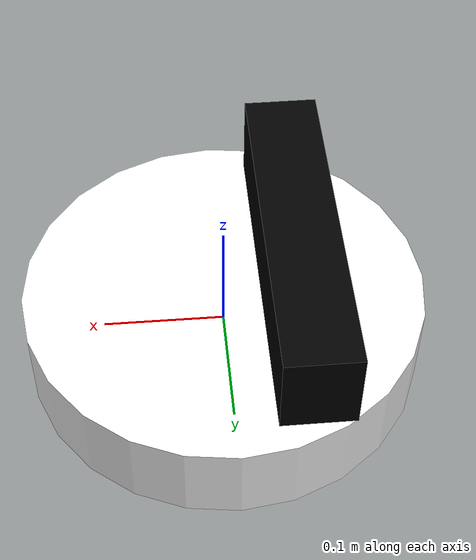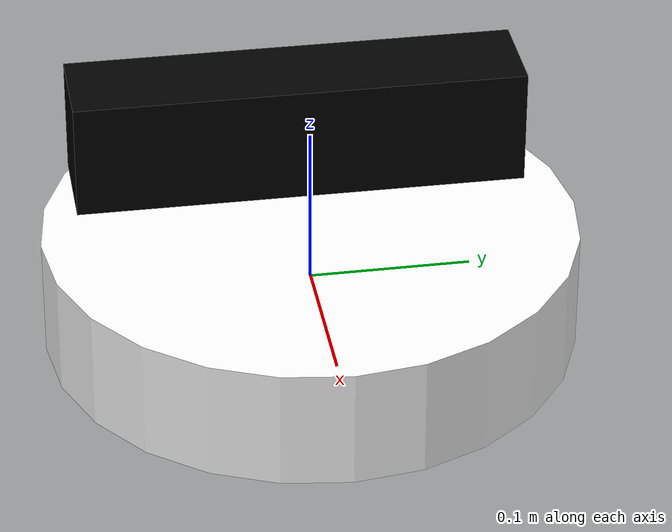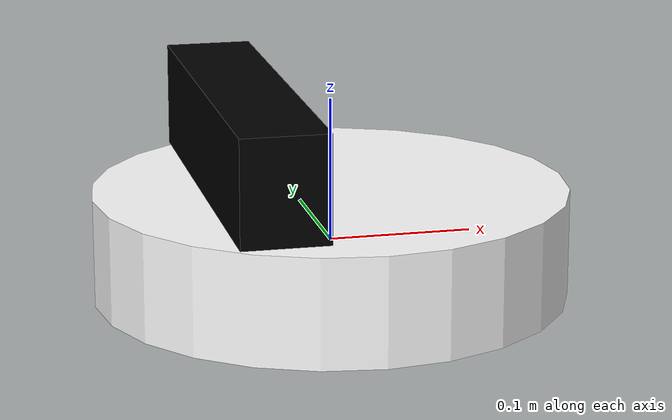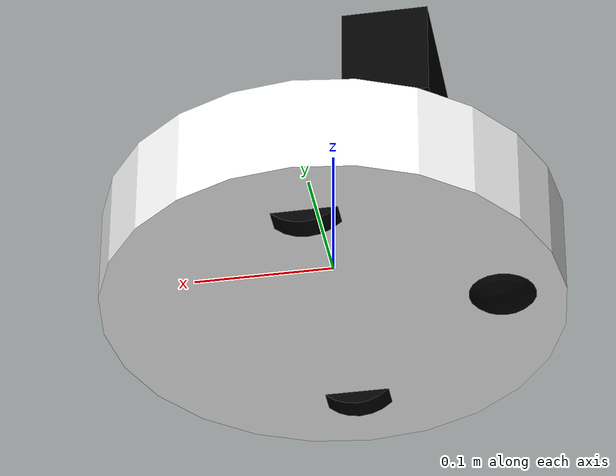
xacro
<?xml version="1.0"?>
<robot name="chudovishe">
  <!-- Основа робота (цилиндр): высота 75 мм, диаметр 330 мм  -->
  <!-- В URDF размеры в метрах: высота 0.075, радиус 0.165 -->
  <link name="odom"/>

  <link name="base_link">
    <visual>
      <origin xyz="0 0 0" rpy="0 0 0"/>
      <geometry>
        <cylinder radius="0.165" length="0.075"/>
      </geometry>
      <material name="white">
        <color rgba="1 1 1 1"/>
      </material>
    </visual>
  </link>

  <joint name="base_link_to_odom" type="fixed">
    <parent link="odom"/>
    <child link="base_link"/>
    <origin xyz="0 0 0" rpy="0 0 0"/>
  </joint>

  <!-- IMU (navX-Micro): по центру основания, под крышкой -->
  <!-- Требование: верх IMU на 5 мм ниже верхней грани основания -->
  <!-- Геометрия IMU (условно): 40x40x2 мм => 0.04x0.04x0.002 м -->
  <link name="imu_link">
    <visual>
      <origin xyz="0 0 0" rpy="0 0 0"/>
      <geometry>
        <box size="0.04 0.04 0.002"/>
      </geometry>
      <material name="gray">
        <color rgba="0.5 0.5 0.5 1"/>
      </material>
    </visual>
  </link>

  <joint name="imu_to_base_link" type="fixed">
    <parent link="base_link"/>
    <child link="imu_link"/>
    <!-- z = base_top - 0.005 - imu_height/2 -->
    <origin xyz="0 0 0.0315" rpy="0 0 0"/>
  </joint>

  <!-- Камера глубины: Kinect (Xbox 360), смотрит вперёд (ось +X) -->
  <!-- Размеры по замеру: длина ~11", высота ~3", глубина ~3" (iFixit) -->
  <!-- В метрах: ширина(Y)=0.2794, глубина(X)=0.0762, высота(Z)=0.0762 -->
  <!-- Требование: расстояние от края основания до центра Kinect = 13.5 мм -->
  <link name="camera_link">
    <visual>
      <origin xyz="0 0 0" rpy="0 0 0"/>
      <geometry>
        <box size="0.06 0.28 0.073"/>
      </geometry>
      <material name="black">
        <color rgba="0 0 0 1"/>
      </material>
    </visual>
  </link>

  <joint name="camera_to_base" type="fixed">
    <parent link="base_link"/>
    <child link="camera_link"/>
    <!-- x = base_radius - 0.0135 (т.е. 13.5 мм от переднего края внутрь), z = на верхней грани основания -->
    <origin xyz="-0.06 0 0.0756" rpy="0 0 0"/>
  </joint>

  <!-- Левое колесо: диаметр 65 мм (радиус 32.5 мм), толщина 17 мм -->
  <link name="left_wheel">
    <visual>
      <!-- Поворачиваем цилиндр так, чтобы ось цилиндра (толщина колеса) была по Y -->
      <origin xyz="0 0 0" rpy="1.5708 0 0"/>
      <geometry>
        <cylinder radius="0.0325" length="0.017"/>
      </geometry>
      <material name="black">
        <color rgba="0 0 0 1"/>
      </material>
    </visual>
  </link>

  <joint name="left_wheel_joint" type="continuous">
    <parent link="base_link"/>
    <child link="left_wheel"/>
    <!-- Расстояние между центрами колес: 219 мм => y = ±0.1095; колёса по центру по оси X -->
    <!-- Колесо выходит из основания вниз на 10 мм -->
    <origin xyz="0 0.1095 -0.015" rpy="0 0 0"/>
    <axis xyz="0 1 0"/>
  </joint>

  <!-- Правое колесо: диаметр 65 мм (радиус 32.5 мм), толщина 17 мм -->
  <link name="right_wheel">
    <visual>
      <origin xyz="0 0 0" rpy="1.5708 0 0"/>
      <geometry>
        <cylinder radius="0.0325" length="0.017"/>
      </geometry>
      <material name="black">
        <color rgba="0 0 0 1"/>
      </material>
    </visual>
  </link>

  <joint name="right_wheel_joint" type="continuous">
    <parent link="base_link"/>
    <child link="right_wheel"/>
    <origin xyz="0 -0.1095 -0.015" rpy="0 0 0"/>
    <axis xyz="0 1 0"/>
  </joint>

  <!-- Ведущее/опорное колесо (сфера): радиус 35 мм -->
  <!-- Требование: сфера выходит из основания вниз на 10 мм -->
  <link name="caster_ball">
    <visual>
      <origin xyz="0 0 0" rpy="0 0 0"/>
      <geometry>
        <sphere radius="0.035"/>
      </geometry>
      <material name="black">
        <color rgba="0 0 0 1"/>
      </material>
    </visual>
  </link>

  <joint name="caster_ball_to_base" type="fixed">
    <parent link="base_link"/>
    <child link="caster_ball"/>
    <!-- По умолчанию поставил сзади (x < 0). Если нужно — можно сдвинуть по X. -->
    <origin xyz="-0.12 0 -0.0125" rpy="0 0 0"/>
  </joint>

<ros2_control name="ChudovisheSystemHardware" type="system">
  <hardware>
    <plugin>chudovishe_hardware/ChudovisheSystemHardware</plugin>
    <param name="port_name">/dev/ttyUSB0</param>
    <param name="baudrate">115200</param>
    <param name="timeout_ms">50</param>
  </hardware>

  <joint name="left_wheel_joint">
    <command_interface name="velocity"/>
    <state_interface name="position"/>
    <state_interface name="velocity"/>
  </joint>

  <joint name="right_wheel_joint">
    <command_interface name="velocity"/>
    <state_interface name="position"/>
    <state_interface name="velocity"/>
  </joint>
</ros2_control>
</robot>
